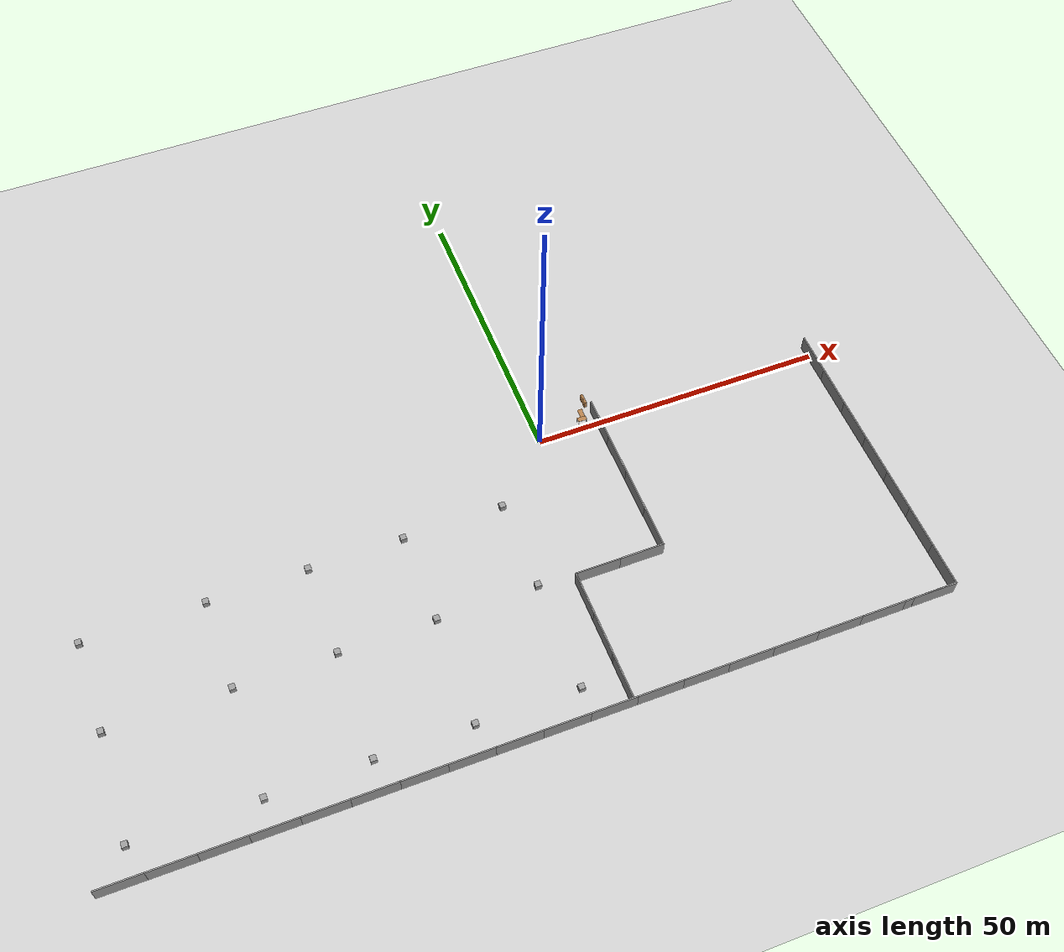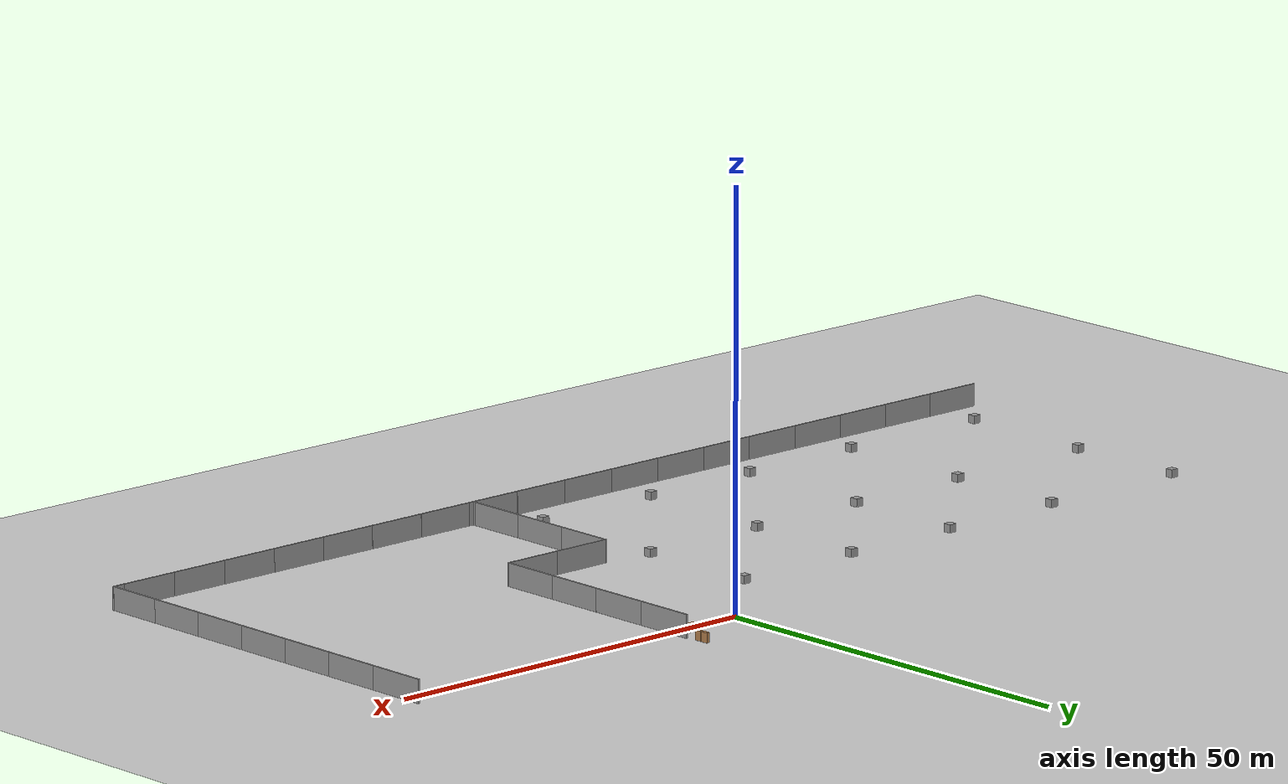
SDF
<sdf version="1.7">
 <world name="default">
  <model name="ground_plane">
   <static>1</static>
   <link name="link">
    <collision name="collision">
     <geometry><plane><normal>0 0 1</normal><size>100 100</size></plane></geometry>
     <surface>
      <contact><collide_bitmask>65535</collide_bitmask></contact>
      <friction><ode><mu>100</mu><mu2>50</mu2></ode></friction>
     </surface>
    </collision>
    <visual name="visual">
     <cast_shadows>0</cast_shadows>
     <geometry><plane><normal>0 0 1</normal><size>100 100</size></plane></geometry>
     <material>
      <script><uri>file://media/materials/scripts/gazebo.material</uri><name>Gazebo/Grey</name></script>
     </material>
    </visual>
   </link>
  </model>
  <model name="grey_wall_clone">
   <static>1</static>
   <link name="link">
    <pose>0 0 1.4 0 -0 0</pose>
    <collision name="collision"><geometry><box><size>7.5 0.2 2.8</size></box></geometry></collision>
    <visual name="visual">
     <cast_shadows>0</cast_shadows>
     <geometry><box><size>7.5 0.2 2.8</size></box></geometry>
     <material>
      <script>
       <uri>model://grey_wall/materials/scripts</uri>
       <uri>model://grey_wall/materials/textures</uri>
       <name>vrc/grey_wall</name>
      </script>
     </material>
    </visual>
   </link>
   <pose>7.13079 -49.8823 0 0 -0 0</pose>
  </model>
  <model name="grey_wall_clone_0">
   <static>1</static>
   <link name="link">
    <pose>0 0 1.4 0 -0 0</pose>
    <collision name="collision"><geometry><box><size>7.5 0.2 2.8</size></box></geometry></collision>
    <visual name="visual">
     <cast_shadows>0</cast_shadows>
     <geometry><box><size>7.5 0.2 2.8</size></box></geometry>
     <material>
      <script>
       <uri>model://grey_wall/materials/scripts</uri>
       <uri>model://grey_wall/materials/textures</uri>
       <name>vrc/grey_wall</name>
      </script>
     </material>
    </visual>
   </link>
   <pose>-0.374793 -49.8831 0 0 -0 0</pose>
  </model>
  <model name="grey_wall_clone_1">
   <static>1</static>
   <link name="link">
    <pose>0 0 1.4 0 -0 0</pose>
    <collision name="collision"><geometry><box><size>7.5 0.2 2.8</size></box></geometry></collision>
    <visual name="visual">
     <cast_shadows>0</cast_shadows>
     <geometry><box><size>7.5 0.2 2.8</size></box></geometry>
     <material>
      <script>
       <uri>model://grey_wall/materials/scripts</uri>
       <uri>model://grey_wall/materials/textures</uri>
       <name>vrc/grey_wall</name>
      </script>
     </material>
    </visual>
   </link>
   <pose>-7.88033 -49.8844 0 0 -0 0</pose>
  </model>
  <model name="grey_wall_clone_2">
   <static>1</static>
   <link name="link">
    <pose>0 0 1.4 0 -0 0</pose>
    <collision name="collision"><geometry><box><size>7.5 0.2 2.8</size></box></geometry></collision>
    <visual name="visual">
     <cast_shadows>0</cast_shadows>
     <geometry><box><size>7.5 0.2 2.8</size></box></geometry>
     <material>
      <script>
       <uri>model://grey_wall/materials/scripts</uri>
       <uri>model://grey_wall/materials/textures</uri>
       <name>vrc/grey_wall</name>
      </script>
     </material>
    </visual>
   </link>
   <pose>-15.3843 -49.877 0 0 -0 0</pose>
  </model>
  <model name="grey_wall_clone_3">
   <static>1</static>
   <link name="link">
    <pose>0 0 1.4 0 -0 0</pose>
    <collision name="collision"><geometry><box><size>7.5 0.2 2.8</size></box></geometry></collision>
    <visual name="visual">
     <cast_shadows>0</cast_shadows>
     <geometry><box><size>7.5 0.2 2.8</size></box></geometry>
     <material>
      <script>
       <uri>model://grey_wall/materials/scripts</uri>
       <uri>model://grey_wall/materials/textures</uri>
       <name>vrc/grey_wall</name>
      </script>
     </material>
    </visual>
   </link>
   <pose>-22.8836 -49.8847 0 0 -0 0</pose>
  </model>
  <model name="grey_wall_clone_4">
   <static>1</static>
   <link name="link">
    <pose>0 0 1.4 0 -0 0</pose>
    <collision name="collision"><geometry><box><size>7.5 0.2 2.8</size></box></geometry></collision>
    <visual name="visual">
     <cast_shadows>0</cast_shadows>
     <geometry><box><size>7.5 0.2 2.8</size></box></geometry>
     <material>
      <script>
       <uri>model://grey_wall/materials/scripts</uri>
       <uri>model://grey_wall/materials/textures</uri>
       <name>vrc/grey_wall</name>
      </script>
     </material>
    </visual>
   </link>
   <pose>-30.2619 -49.8845 0 0 -0 0</pose>
  </model>
  <model name="grey_wall_clone_5">
   <static>1</static>
   <link name="link">
    <pose>0 0 1.4 0 -0 0</pose>
    <collision name="collision"><geometry><box><size>7.5 0.2 2.8</size></box></geometry></collision>
    <visual name="visual">
     <cast_shadows>0</cast_shadows>
     <geometry><box><size>7.5 0.2 2.8</size></box></geometry>
     <material>
      <script>
       <uri>model://grey_wall/materials/scripts</uri>
       <uri>model://grey_wall/materials/textures</uri>
       <name>vrc/grey_wall</name>
      </script>
     </material>
    </visual>
   </link>
   <pose>-37.6658 -49.8798 0 0 -0 0</pose>
  </model>
  <model name="grey_wall_clone_6">
   <static>1</static>
   <link name="link">
    <pose>0 0 1.4 0 -0 0</pose>
    <collision name="collision"><geometry><box><size>7.5 0.2 2.8</size></box></geometry></collision>
    <visual name="visual">
     <cast_shadows>0</cast_shadows>
     <geometry><box><size>7.5 0.2 2.8</size></box></geometry>
     <material>
      <script>
       <uri>model://grey_wall/materials/scripts</uri>
       <uri>model://grey_wall/materials/textures</uri>
       <name>vrc/grey_wall</name>
      </script>
     </material>
    </visual>
   </link>
   <pose>-45.0649 -49.8818 0 0 -0 0</pose>
  </model>
  <model name="grey_wall_clone_7">
   <static>1</static>
   <link name="link">
    <pose>0 0 1.4 0 -0 0</pose>
    <collision name="collision"><geometry><box><size>7.5 0.2 2.8</size></box></geometry></collision>
    <visual name="visual">
     <cast_shadows>0</cast_shadows>
     <geometry><box><size>7.5 0.2 2.8</size></box></geometry>
     <material>
      <script>
       <uri>model://grey_wall/materials/scripts</uri>
       <uri>model://grey_wall/materials/textures</uri>
       <name>vrc/grey_wall</name>
      </script>
     </material>
    </visual>
   </link>
   <pose>-52.4924 -49.8817 0 0 -0 0</pose>
  </model>
  <model name="grey_wall_clone_8">
   <static>1</static>
   <link name="link">
    <pose>0 0 1.4 0 -0 0</pose>
    <collision name="collision"><geometry><box><size>7.5 0.2 2.8</size></box></geometry></collision>
    <visual name="visual">
     <cast_shadows>0</cast_shadows>
     <geometry><box><size>7.5 0.2 2.8</size></box></geometry>
     <material>
      <script>
       <uri>model://grey_wall/materials/scripts</uri>
       <uri>model://grey_wall/materials/textures</uri>
       <name>vrc/grey_wall</name>
      </script>
     </material>
    </visual>
   </link>
   <pose>-59.9913 -49.8823 0 0 -0 0</pose>
  </model>
  <model name="grey_wall_clone_9">
   <static>1</static>
   <link name="link">
    <pose>0 0 1.4 0 -0 0</pose>
    <collision name="collision"><geometry><box><size>7.5 0.2 2.8</size></box></geometry></collision>
    <visual name="visual">
     <cast_shadows>0</cast_shadows>
     <geometry><box><size>7.5 0.2 2.8</size></box></geometry>
     <material>
      <script>
       <uri>model://grey_wall/materials/scripts</uri>
       <uri>model://grey_wall/materials/textures</uri>
       <name>vrc/grey_wall</name>
      </script>
     </material>
    </visual>
   </link>
   <pose>-67.4862 -49.8731 0 0 -0 0</pose>
  </model>
  <model name="grey_wall_clone_10">
   <static>1</static>
   <link name="link">
    <pose>0 0 1.4 0 -0 0</pose>
    <collision name="collision"><geometry><box><size>7.5 0.2 2.8</size></box></geometry></collision>
    <visual name="visual">
     <cast_shadows>0</cast_shadows>
     <geometry><box><size>7.5 0.2 2.8</size></box></geometry>
     <material>
      <script>
       <uri>model://grey_wall/materials/scripts</uri>
       <uri>model://grey_wall/materials/textures</uri>
       <name>vrc/grey_wall</name>
      </script>
     </material>
    </visual>
   </link>
   <pose>-74.9801 -49.877 0 0 -0 0</pose>
  </model>
  <model name="grey_wall_clone_11">
   <static>1</static>
   <link name="link">
    <pose>0 0 1.4 0 -0 0</pose>
    <collision name="collision"><geometry><box><size>7.5 0.2 2.8</size></box></geometry></collision>
    <visual name="visual">
     <cast_shadows>0</cast_shadows>
     <geometry><box><size>7.5 0.2 2.8</size></box></geometry>
     <material>
      <script>
       <uri>model://grey_wall/materials/scripts</uri>
       <uri>model://grey_wall/materials/textures</uri>
       <name>vrc/grey_wall</name>
      </script>
     </material>
    </visual>
   </link>
   <pose>-82.4353 -49.869 0 0 -0 0</pose>
  </model>
  <model name="grey_wall_clone_21_clone_20_clone_15">
   <static>1</static>
   <link name="link">
    <pose>0 0 1.4 0 -0 0</pose>
    <collision name="collision"><geometry><box><size>7.5 0.2 2.8</size></box></geometry></collision>
    <visual name="visual">
     <cast_shadows>0</cast_shadows>
     <geometry><box><size>7.5 0.2 2.8</size></box></geometry>
     <material>
      <script>
       <uri>model://grey_wall/materials/scripts</uri>
       <uri>model://grey_wall/materials/textures</uri>
       <name>vrc/grey_wall</name>
      </script>
     </material>
    </visual>
   </link>
   <pose>49.7545 -1.60418 0 0 -0 1.57</pose>
  </model>
  <model name="grey_wall_clone_21_clone_20_clone_16">
   <static>1</static>
   <link name="link">
    <pose>0 0 1.4 0 -0 0</pose>
    <collision name="collision"><geometry><box><size>7.5 0.2 2.8</size></box></geometry></collision>
    <visual name="visual">
     <cast_shadows>0</cast_shadows>
     <geometry><box><size>7.5 0.2 2.8</size></box></geometry>
     <material>
      <script>
       <uri>model://grey_wall/materials/scripts</uri>
       <uri>model://grey_wall/materials/textures</uri>
       <name>vrc/grey_wall</name>
      </script>
     </material>
    </visual>
   </link>
   <pose>49.7485 -9.06367 0 0 -0 1.57</pose>
  </model>
  <model name="grey_wall_clone_21_clone_20_clone_17">
   <static>1</static>
   <link name="link">
    <pose>0 0 1.4 0 -0 0</pose>
    <collision name="collision"><geometry><box><size>7.5 0.2 2.8</size></box></geometry></collision>
    <visual name="visual">
     <cast_shadows>0</cast_shadows>
     <geometry><box><size>7.5 0.2 2.8</size></box></geometry>
     <material>
      <script>
       <uri>model://grey_wall/materials/scripts</uri>
       <uri>model://grey_wall/materials/textures</uri>
       <name>vrc/grey_wall</name>
      </script>
     </material>
    </visual>
   </link>
   <pose>49.7355 -16.5323 0 0 -0 1.57</pose>
  </model>
  <model name="grey_wall_clone_21_clone_20_clone_18">
   <static>1</static>
   <link name="link">
    <pose>0 0 1.4 0 -0 0</pose>
    <collision name="collision"><geometry><box><size>7.5 0.2 2.8</size></box></geometry></collision>
    <visual name="visual">
     <cast_shadows>0</cast_shadows>
     <geometry><box><size>7.5 0.2 2.8</size></box></geometry>
     <material>
      <script>
       <uri>model://grey_wall/materials/scripts</uri>
       <uri>model://grey_wall/materials/textures</uri>
       <name>vrc/grey_wall</name>
      </script>
     </material>
    </visual>
   </link>
   <pose>49.7352 -23.9046 0 0 -0 1.57</pose>
  </model>
  <model name="grey_wall_clone_21_clone_20_clone_19">
   <static>1</static>
   <link name="link">
    <pose>0 0 1.4 0 -0 0</pose>
    <collision name="collision"><geometry><box><size>7.5 0.2 2.8</size></box></geometry></collision>
    <visual name="visual">
     <cast_shadows>0</cast_shadows>
     <geometry><box><size>7.5 0.2 2.8</size></box></geometry>
     <material>
      <script>
       <uri>model://grey_wall/materials/scripts</uri>
       <uri>model://grey_wall/materials/textures</uri>
       <name>vrc/grey_wall</name>
      </script>
     </material>
    </visual>
   </link>
   <pose>49.734 -31.3808 0 0 -0 1.57</pose>
  </model>
  <model name="grey_wall_clone_21_clone_20_clone_20">
   <static>1</static>
   <link name="link">
    <pose>0 0 1.4 0 -0 0</pose>
    <collision name="collision"><geometry><box><size>7.5 0.2 2.8</size></box></geometry></collision>
    <visual name="visual">
     <cast_shadows>0</cast_shadows>
     <geometry><box><size>7.5 0.2 2.8</size></box></geometry>
     <material>
      <script>
       <uri>model://grey_wall/materials/scripts</uri>
       <uri>model://grey_wall/materials/textures</uri>
       <name>vrc/grey_wall</name>
      </script>
     </material>
    </visual>
   </link>
   <pose>49.7216 -38.8579 0 0 -0 1.57</pose>
  </model>
  <model name="grey_wall_clone_21_clone_20_clone_21">
   <static>1</static>
   <link name="link">
    <pose>0 0 1.4 0 -0 0</pose>
    <collision name="collision"><geometry><box><size>7.5 0.2 2.8</size></box></geometry></collision>
    <visual name="visual">
     <cast_shadows>0</cast_shadows>
     <geometry><box><size>7.5 0.2 2.8</size></box></geometry>
     <material>
      <script>
       <uri>model://grey_wall/materials/scripts</uri>
       <uri>model://grey_wall/materials/textures</uri>
       <name>vrc/grey_wall</name>
      </script>
     </material>
    </visual>
   </link>
   <pose>49.7104 -46.1719 0 0 -0 1.57</pose>
  </model>
  <model name="grey_wall_clone_clone">
   <static>1</static>
   <link name="link">
    <pose>0 0 1.4 0 -0 0</pose>
    <collision name="collision"><geometry><box><size>7.5 0.2 2.8</size></box></geometry></collision>
    <visual name="visual">
     <cast_shadows>0</cast_shadows>
     <geometry><box><size>7.5 0.2 2.8</size></box></geometry>
     <material>
      <script>
       <uri>model://grey_wall/materials/scripts</uri>
       <uri>model://grey_wall/materials/textures</uri>
       <name>vrc/grey_wall</name>
      </script>
     </material>
    </visual>
   </link>
   <pose>14.6278 -49.8878 0 0 -0 0</pose>
  </model>
  <model name="grey_wall_clone_clone_0">
   <static>1</static>
   <link name="link">
    <pose>0 0 1.4 0 -0 0</pose>
    <collision name="collision"><geometry><box><size>7.5 0.2 2.8</size></box></geometry></collision>
    <visual name="visual">
     <cast_shadows>0</cast_shadows>
     <geometry><box><size>7.5 0.2 2.8</size></box></geometry>
     <material>
      <script>
       <uri>model://grey_wall/materials/scripts</uri>
       <uri>model://grey_wall/materials/textures</uri>
       <name>vrc/grey_wall</name>
      </script>
     </material>
    </visual>
   </link>
   <pose>22.0975 -49.8885 0 0 -0 0</pose>
  </model>
  <model name="grey_wall_clone_clone_1">
   <static>1</static>
   <link name="link">
    <pose>0 0 1.4 0 -0 0</pose>
    <collision name="collision"><geometry><box><size>7.5 0.2 2.8</size></box></geometry></collision>
    <visual name="visual">
     <cast_shadows>0</cast_shadows>
     <geometry><box><size>7.5 0.2 2.8</size></box></geometry>
     <material>
      <script>
       <uri>model://grey_wall/materials/scripts</uri>
       <uri>model://grey_wall/materials/textures</uri>
       <name>vrc/grey_wall</name>
      </script>
     </material>
    </visual>
   </link>
   <pose>29.56 -49.8861 0 0 -0 0</pose>
  </model>
  <model name="grey_wall_clone_clone_2">
   <static>1</static>
   <link name="link">
    <pose>0 0 1.4 0 -0 0</pose>
    <collision name="collision"><geometry><box><size>7.5 0.2 2.8</size></box></geometry></collision>
    <visual name="visual">
     <cast_shadows>0</cast_shadows>
     <geometry><box><size>7.5 0.2 2.8</size></box></geometry>
     <material>
      <script>
       <uri>model://grey_wall/materials/scripts</uri>
       <uri>model://grey_wall/materials/textures</uri>
       <name>vrc/grey_wall</name>
      </script>
     </material>
    </visual>
   </link>
   <pose>37.0546 -49.8861 0 0 -0 0</pose>
  </model>
  <model name="grey_wall_clone_clone_3">
   <static>1</static>
   <link name="link">
    <pose>0 0 1.4 0 -0 0</pose>
    <collision name="collision"><geometry><box><size>7.5 0.2 2.8</size></box></geometry></collision>
    <visual name="visual">
     <cast_shadows>0</cast_shadows>
     <geometry><box><size>7.5 0.2 2.8</size></box></geometry>
     <material>
      <script>
       <uri>model://grey_wall/materials/scripts</uri>
       <uri>model://grey_wall/materials/textures</uri>
       <name>vrc/grey_wall</name>
      </script>
     </material>
    </visual>
   </link>
   <pose>44.538 -49.8866 0 0 -0 0</pose>
  </model>
  <model name="grey_wall_clone_clone_4">
   <static>1</static>
   <link name="link">
    <pose>0 0 1.4 0 -0 0</pose>
    <collision name="collision"><geometry><box><size>7.5 0.2 2.8</size></box></geometry></collision>
    <visual name="visual">
     <cast_shadows>0</cast_shadows>
     <geometry><box><size>7.5 0.2 2.8</size></box></geometry>
     <material>
      <script>
       <uri>model://grey_wall/materials/scripts</uri>
       <uri>model://grey_wall/materials/textures</uri>
       <name>vrc/grey_wall</name>
      </script>
     </material>
    </visual>
   </link>
   <pose>46.0661 -49.8918 0 0 -0 0</pose>
  </model>
  <model name="grey_wall_clone_21_clone_20_clone_13_clone_0">
   <static>1</static>
   <link name="link">
    <pose>0 0 1.4 0 -0 0</pose>
    <collision name="collision"><geometry><box><size>7.5 0.2 2.8</size></box></geometry></collision>
    <visual name="visual">
     <cast_shadows>0</cast_shadows>
     <geometry><box><size>7.5 0.2 2.8</size></box></geometry>
     <material>
      <script>
       <uri>model://grey_wall/materials/scripts</uri>
       <uri>model://grey_wall/materials/textures</uri>
       <name>vrc/grey_wall</name>
      </script>
     </material>
    </visual>
   </link>
   <pose>10.1533 -1.00076 0 0 -0 1.57</pose>
  </model>
  <model name="grey_wall_clone_21_clone_20_clone_13_clone_1">
   <static>1</static>
   <link name="link">
    <pose>0 0 1.4 0 -0 0</pose>
    <collision name="collision"><geometry><box><size>7.5 0.2 2.8</size></box></geometry></collision>
    <visual name="visual">
     <cast_shadows>0</cast_shadows>
     <geometry><box><size>7.5 0.2 2.8</size></box></geometry>
     <material>
      <script>
       <uri>model://grey_wall/materials/scripts</uri>
       <uri>model://grey_wall/materials/textures</uri>
       <name>vrc/grey_wall</name>
      </script>
     </material>
    </visual>
   </link>
   <pose>10.1452 -8.50424 0 0 -0 1.57</pose>
  </model>
  <model name="grey_wall_clone_21_clone_20_clone_13_clone_2">
   <static>1</static>
   <link name="link">
    <pose>0 0 1.4 0 -0 0</pose>
    <collision name="collision"><geometry><box><size>7.5 0.2 2.8</size></box></geometry></collision>
    <visual name="visual">
     <cast_shadows>0</cast_shadows>
     <geometry><box><size>7.5 0.2 2.8</size></box></geometry>
     <material>
      <script>
       <uri>model://grey_wall/materials/scripts</uri>
       <uri>model://grey_wall/materials/textures</uri>
       <name>vrc/grey_wall</name>
      </script>
     </material>
    </visual>
   </link>
   <pose>10.1381 -15.9861 0 0 -0 1.57</pose>
  </model>
  <model name="grey_wall_clone_21_clone_20_clone_13_clone_3">
   <static>1</static>
   <link name="link">
    <pose>0 0 1.4 0 -0 0</pose>
    <collision name="collision"><geometry><box><size>7.5 0.2 2.8</size></box></geometry></collision>
    <visual name="visual">
     <cast_shadows>0</cast_shadows>
     <geometry><box><size>7.5 0.2 2.8</size></box></geometry>
     <material>
      <script>
       <uri>model://grey_wall/materials/scripts</uri>
       <uri>model://grey_wall/materials/textures</uri>
       <name>vrc/grey_wall</name>
      </script>
     </material>
    </visual>
   </link>
   <pose>10.1348 -23.447 0 0 -0 1.57</pose>
  </model>
  <model name="grey_wall_clone_clone_5_clone">
   <static>1</static>
   <link name="link">
    <pose>0 0 1.4 0 -0 0</pose>
    <collision name="collision"><geometry><box><size>7.5 0.2 2.8</size></box></geometry></collision>
    <visual name="visual">
     <cast_shadows>0</cast_shadows>
     <geometry><box><size>7.5 0.2 2.8</size></box></geometry>
     <material>
      <script>
       <uri>model://grey_wall/materials/scripts</uri>
       <uri>model://grey_wall/materials/textures</uri>
       <name>vrc/grey_wall</name>
      </script>
     </material>
    </visual>
   </link>
   <pose>6.49638 -27.1102 0 0 -0 0</pose>
  </model>
  <model name="grey_wall_clone_clone_5_clone_0">
   <static>1</static>
   <link name="link">
    <pose>0 0 1.4 0 -0 0</pose>
    <collision name="collision"><geometry><box><size>7.5 0.2 2.8</size></box></geometry></collision>
    <visual name="visual">
     <cast_shadows>0</cast_shadows>
     <geometry><box><size>7.5 0.2 2.8</size></box></geometry>
     <material>
      <script>
       <uri>model://grey_wall/materials/scripts</uri>
       <uri>model://grey_wall/materials/textures</uri>
       <name>vrc/grey_wall</name>
      </script>
     </material>
    </visual>
   </link>
   <pose>-0.969636 -27.1078 0 0 -0 0</pose>
  </model>
  <model name="grey_wall_clone_21_clone_20_clone_13_clone_3_clone">
   <static>1</static>
   <link name="link">
    <pose>0 0 1.4 0 -0 0</pose>
    <collision name="collision"><geometry><box><size>7.5 0.2 2.8</size></box></geometry></collision>
    <visual name="visual">
     <cast_shadows>0</cast_shadows>
     <geometry><box><size>7.5 0.2 2.8</size></box></geometry>
     <material>
      <script>
       <uri>model://grey_wall/materials/scripts</uri>
       <uri>model://grey_wall/materials/textures</uri>
       <name>vrc/grey_wall</name>
      </script>
     </material>
    </visual>
   </link>
   <pose>-4.79323 -30.7579 0 0 -0 1.57</pose>
  </model>
  <model name="grey_wall_clone_21_clone_20_clone_13_clone_3_clone_0">
   <static>1</static>
   <link name="link">
    <pose>0 0 1.4 0 -0 0</pose>
    <collision name="collision"><geometry><box><size>7.5 0.2 2.8</size></box></geometry></collision>
    <visual name="visual">
     <cast_shadows>0</cast_shadows>
     <geometry><box><size>7.5 0.2 2.8</size></box></geometry>
     <material>
      <script>
       <uri>model://grey_wall/materials/scripts</uri>
       <uri>model://grey_wall/materials/textures</uri>
       <name>vrc/grey_wall</name>
      </script>
     </material>
    </visual>
   </link>
   <pose>-4.8016 -38.2646 0 0 -0 1.57</pose>
  </model>
  <model name="grey_wall_clone_21_clone_20_clone_13_clone_3_clone_1">
   <static>1</static>
   <link name="link">
    <pose>0 0 1.4 0 -0 0</pose>
    <collision name="collision"><geometry><box><size>7.5 0.2 2.8</size></box></geometry></collision>
    <visual name="visual">
     <cast_shadows>0</cast_shadows>
     <geometry><box><size>7.5 0.2 2.8</size></box></geometry>
     <material>
      <script>
       <uri>model://grey_wall/materials/scripts</uri>
       <uri>model://grey_wall/materials/textures</uri>
       <name>vrc/grey_wall</name>
      </script>
     </material>
    </visual>
   </link>
   <pose>-4.81761 -45.7125 0 0 -0 1.57</pose>
  </model>
  <model name="grey_wall_clone_21_clone_20_clone_13_clone_3_clone_2">
   <static>1</static>
   <link name="link">
    <pose>0 0 1.4 0 -0 0</pose>
    <collision name="collision"><geometry><box><size>7.5 0.2 2.8</size></box></geometry></collision>
    <visual name="visual">
     <cast_shadows>0</cast_shadows>
     <geometry><box><size>7.5 0.2 2.8</size></box></geometry>
     <material>
      <script>
       <uri>model://grey_wall/materials/scripts</uri>
       <uri>model://grey_wall/materials/textures</uri>
       <name>vrc/grey_wall</name>
      </script>
     </material>
    </visual>
   </link>
   <pose>-4.82476 -46.2342 0 0 -0 1.57</pose>
  </model>
  <model name="table_clone">
   <static>1</static>
   <link name="link">
    <collision name="surface">
     <pose>0 0 1 0 -0 0</pose>
     <geometry><box><size>1.5 0.8 0.03</size></box></geometry>
     <surface><friction><ode><mu>0.6</mu><mu2>0.6</mu2></ode></friction></surface>
    </collision>
    <visual name="visual1">
     <pose>0 0 1 0 -0 0</pose>
     <geometry><box><size>1.5 0.8 0.03</size></box></geometry>
     <material>
      <script><uri>file://media/materials/scripts/gazebo.material</uri><name>Gazebo/Wood</name></script>
     </material>
    </visual>
    <collision name="front_left_leg">
     <pose>0.68 0.38 0.5 0 -0 0</pose>
     <geometry><cylinder><radius>0.02</radius><length>1</length></cylinder></geometry>
    </collision>
    <visual name="front_left_leg">
     <pose>0.68 0.38 0.5 0 -0 0</pose>
     <geometry><cylinder><radius>0.02</radius><length>1</length></cylinder></geometry>
     <material>
      <script><uri>file://media/materials/scripts/gazebo.material</uri><name>Gazebo/Grey</name></script>
     </material>
    </visual>
    <collision name="front_right_leg">
     <pose>0.68 -0.38 0.5 0 -0 0</pose>
     <geometry><cylinder><radius>0.02</radius><length>1</length></cylinder></geometry>
    </collision>
    <visual name="front_right_leg">
     <pose>0.68 -0.38 0.5 0 -0 0</pose>
     <geometry><cylinder><radius>0.02</radius><length>1</length></cylinder></geometry>
     <material>
      <script><uri>file://media/materials/scripts/gazebo.material</uri><name>Gazebo/Grey</name></script>
     </material>
    </visual>
    <collision name="back_right_leg">
     <pose>-0.68 -0.38 0.5 0 -0 0</pose>
     <geometry><cylinder><radius>0.02</radius><length>1</length></cylinder></geometry>
    </collision>
    <visual name="back_right_leg">
     <pose>-0.68 -0.38 0.5 0 -0 0</pose>
     <geometry><cylinder><radius>0.02</radius><length>1</length></cylinder></geometry>
     <material>
      <script><uri>file://media/materials/scripts/gazebo.material</uri><name>Gazebo/Grey</name></script>
     </material>
    </visual>
    <collision name="back_left_leg">
     <pose>-0.68 0.38 0.5 0 -0 0</pose>
     <geometry><cylinder><radius>0.02</radius><length>1</length></cylinder></geometry>
    </collision>
    <visual name="back_left_leg">
     <pose>-0.68 0.38 0.5 0 -0 0</pose>
     <geometry><cylinder><radius>0.02</radius><length>1</length></cylinder></geometry>
     <material>
      <script><uri>file://media/materials/scripts/gazebo.material</uri><name>Gazebo/Grey</name></script>
     </material>
    </visual>
   </link>
   <pose>8.24796 2.34857 0 0 0 -1.60074</pose>
  </model>
  <model name="table_clone_0">
   <static>1</static>
   <link name="link">
    <collision name="surface">
     <pose>0 0 1 0 -0 0</pose>
     <geometry><box><size>1.5 0.8 0.03</size></box></geometry>
     <surface><friction><ode><mu>0.6</mu><mu2>0.6</mu2></ode></friction></surface>
    </collision>
    <visual name="visual1">
     <pose>0 0 1 0 -0 0</pose>
     <geometry><box><size>1.5 0.8 0.03</size></box></geometry>
     <material>
      <script><uri>file://media/materials/scripts/gazebo.material</uri><name>Gazebo/Wood</name></script>
     </material>
    </visual>
    <collision name="front_left_leg">
     <pose>0.68 0.38 0.5 0 -0 0</pose>
     <geometry><cylinder><radius>0.02</radius><length>1</length></cylinder></geometry>
    </collision>
    <visual name="front_left_leg">
     <pose>0.68 0.38 0.5 0 -0 0</pose>
     <geometry><cylinder><radius>0.02</radius><length>1</length></cylinder></geometry>
     <material>
      <script><uri>file://media/materials/scripts/gazebo.material</uri><name>Gazebo/Grey</name></script>
     </material>
    </visual>
    <collision name="front_right_leg">
     <pose>0.68 -0.38 0.5 0 -0 0</pose>
     <geometry><cylinder><radius>0.02</radius><length>1</length></cylinder></geometry>
    </collision>
    <visual name="front_right_leg">
     <pose>0.68 -0.38 0.5 0 -0 0</pose>
     <geometry><cylinder><radius>0.02</radius><length>1</length></cylinder></geometry>
     <material>
      <script><uri>file://media/materials/scripts/gazebo.material</uri><name>Gazebo/Grey</name></script>
     </material>
    </visual>
    <collision name="back_right_leg">
     <pose>-0.68 -0.38 0.5 0 -0 0</pose>
     <geometry><cylinder><radius>0.02</radius><length>1</length></cylinder></geometry>
    </collision>
    <visual name="back_right_leg">
     <pose>-0.68 -0.38 0.5 0 -0 0</pose>
     <geometry><cylinder><radius>0.02</radius><length>1</length></cylinder></geometry>
     <material>
      <script><uri>file://media/materials/scripts/gazebo.material</uri><name>Gazebo/Grey</name></script>
     </material>
    </visual>
    <collision name="back_left_leg">
     <pose>-0.68 0.38 0.5 0 -0 0</pose>
     <geometry><cylinder><radius>0.02</radius><length>1</length></cylinder></geometry>
    </collision>
    <visual name="back_left_leg">
     <pose>-0.68 0.38 0.5 0 -0 0</pose>
     <geometry><cylinder><radius>0.02</radius><length>1</length></cylinder></geometry>
     <material>
      <script><uri>file://media/materials/scripts/gazebo.material</uri><name>Gazebo/Grey</name></script>
     </material>
    </visual>
   </link>
   <pose>7.91448 1.16372 0 0 -0 0</pose>
  </model>
  <model name="unit_box">
   <pose>-10.6413 -10.0264 0.499991 0 -0 0</pose>
   <link name="link">
    <inertial>
     <mass>1</mass>
     <inertia>
      <ixx>0.166667</ixx>
      <ixy>0</ixy>
      <ixz>0</ixz>
      <iyy>0.166667</iyy>
      <iyz>0</iyz>
      <izz>0.166667</izz>
     </inertia>
    </inertial>
    <collision name="collision"><geometry><box><size>1 1 1</size></box></geometry></collision>
    <visual name="visual">
     <geometry><box><size>1 1 1</size></box></geometry>
     <material>
      <script><name>Gazebo/Grey</name><uri>file://media/materials/scripts/gazebo.material</uri></script>
     </material>
    </visual>
   </link>
  </model>
  <model name="unit_box_clone_1">
   <pose>-80 -10.0358 0.499991 0 -0 0</pose>
   <link name="link">
    <inertial>
     <mass>1</mass>
     <inertia>
      <ixx>0.166667</ixx>
      <ixy>0</ixy>
      <ixz>0</ixz>
      <iyy>0.166667</iyy>
      <iyz>0</iyz>
      <izz>0.166667</izz>
     </inertia>
    </inertial>
    <collision name="collision"><geometry><box><size>1 1 1</size></box></geometry></collision>
    <visual name="visual">
     <geometry><box><size>1 1 1</size></box></geometry>
     <material>
      <script><name>Gazebo/Grey</name><uri>file://media/materials/scripts/gazebo.material</uri></script>
     </material>
    </visual>
   </link>
  </model>
  <model name="unit_box_clone_2">
   <pose>-60 -10.0362 0.499995 -5e-06 4e-06 -3e-06</pose>
   <link name="link">
    <inertial>
     <mass>1</mass>
     <inertia>
      <ixx>0.166667</ixx>
      <ixy>0</ixy>
      <ixz>0</ixz>
      <iyy>0.166667</iyy>
      <iyz>0</iyz>
      <izz>0.166667</izz>
     </inertia>
    </inertial>
    <collision name="collision"><geometry><box><size>1 1 1</size></box></geometry></collision>
    <visual name="visual">
     <geometry><box><size>1 1 1</size></box></geometry>
     <material>
      <script><name>Gazebo/Grey</name><uri>file://media/materials/scripts/gazebo.material</uri></script>
     </material>
    </visual>
   </link>
  </model>
  <model name="unit_box_clone_3">
   <pose>-43.4078 -10.0375 0.499995 0 -1e-05 -0.001402</pose>
   <link name="link">
    <inertial>
     <mass>1</mass>
     <inertia>
      <ixx>0.166667</ixx>
      <ixy>0</ixy>
      <ixz>0</ixz>
      <iyy>0.166667</iyy>
      <iyz>0</iyz>
      <izz>0.166667</izz>
     </inertia>
    </inertial>
    <collision name="collision"><geometry><box><size>1 1 1</size></box></geometry></collision>
    <visual name="visual">
     <geometry><box><size>1 1 1</size></box></geometry>
     <material>
      <script><name>Gazebo/Grey</name><uri>file://media/materials/scripts/gazebo.material</uri></script>
     </material>
    </visual>
   </link>
  </model>
  <model name="unit_box_clone_4">
   <pose>-27.5874 -10.0392 0.499995 -5e-06 -4e-06 5e-06</pose>
   <link name="link">
    <inertial>
     <mass>1</mass>
     <inertia>
      <ixx>0.166667</ixx>
      <ixy>0</ixy>
      <ixz>0</ixz>
      <iyy>0.166667</iyy>
      <iyz>0</iyz>
      <izz>0.166667</izz>
     </inertia>
    </inertial>
    <collision name="collision"><geometry><box><size>1 1 1</size></box></geometry></collision>
    <visual name="visual">
     <geometry><box><size>1 1 1</size></box></geometry>
     <material>
      <script><name>Gazebo/Grey</name><uri>file://media/materials/scripts/gazebo.material</uri></script>
     </material>
    </visual>
   </link>
  </model>
  <model name="unit_box_clone_10">
   <pose>-10.6321 -25.7583 0.499991 0 -0 1e-05</pose>
   <link name="link">
    <inertial>
     <mass>1</mass>
     <inertia>
      <ixx>0.166667</ixx>
      <ixy>0</ixy>
      <ixz>0</ixz>
      <iyy>0.166667</iyy>
      <iyz>0</iyz>
      <izz>0.166667</izz>
     </inertia>
    </inertial>
    <collision name="collision"><geometry><box><size>1 1 1</size></box></geometry></collision>
    <visual name="visual">
     <geometry><box><size>1 1 1</size></box></geometry>
     <material>
      <script><name>Gazebo/Grey</name><uri>file://media/materials/scripts/gazebo.material</uri></script>
     </material>
    </visual>
   </link>
  </model>
  <model name="unit_box_clone_10_clone_0">
   <pose>-80 -25.754 0.499991 0 -0 1e-05</pose>
   <link name="link">
    <inertial>
     <mass>1</mass>
     <inertia>
      <ixx>0.166667</ixx>
      <ixy>0</ixy>
      <ixz>0</ixz>
      <iyy>0.166667</iyy>
      <iyz>0</iyz>
      <izz>0.166667</izz>
     </inertia>
    </inertial>
    <collision name="collision"><geometry><box><size>1 1 1</size></box></geometry></collision>
    <visual name="visual">
     <geometry><box><size>1 1 1</size></box></geometry>
     <material>
      <script><name>Gazebo/Grey</name><uri>file://media/materials/scripts/gazebo.material</uri></script>
     </material>
    </visual>
   </link>
  </model>
  <model name="unit_box_clone_10_clone_1">
   <pose>-60 -25.7572 0.499997 0 5e-06 1e-05</pose>
   <link name="link">
    <inertial>
     <mass>1</mass>
     <inertia>
      <ixx>0.166667</ixx>
      <ixy>0</ixy>
      <ixz>0</ixz>
      <iyy>0.166667</iyy>
      <iyz>0</iyz>
      <izz>0.166667</izz>
     </inertia>
    </inertial>
    <collision name="collision"><geometry><box><size>1 1 1</size></box></geometry></collision>
    <visual name="visual">
     <geometry><box><size>1 1 1</size></box></geometry>
     <material>
      <script><name>Gazebo/Grey</name><uri>file://media/materials/scripts/gazebo.material</uri></script>
     </material>
    </visual>
   </link>
  </model>
  <model name="unit_box_clone_10_clone_2">
   <pose>-43.4612 -25.7513 0.499995 -5e-06 4e-06 1e-05</pose>
   <link name="link">
    <inertial>
     <mass>1</mass>
     <inertia>
      <ixx>0.166667</ixx>
      <ixy>0</ixy>
      <ixz>0</ixz>
      <iyy>0.166667</iyy>
      <iyz>0</iyz>
      <izz>0.166667</izz>
     </inertia>
    </inertial>
    <collision name="collision"><geometry><box><size>1 1 1</size></box></geometry></collision>
    <visual name="visual">
     <geometry><box><size>1 1 1</size></box></geometry>
     <material>
      <script><name>Gazebo/Grey</name><uri>file://media/materials/scripts/gazebo.material</uri></script>
     </material>
    </visual>
   </link>
  </model>
  <model name="unit_box_clone_10_clone_3">
   <pose>-27.4474 -25.7485 0.499995 -5e-06 -4e-06 1.5e-05</pose>
   <link name="link">
    <inertial>
     <mass>1</mass>
     <inertia>
      <ixx>0.166667</ixx>
      <ixy>0</ixy>
      <ixz>0</ixz>
      <iyy>0.166667</iyy>
      <iyz>0</iyz>
      <izz>0.166667</izz>
     </inertia>
    </inertial>
    <collision name="collision"><geometry><box><size>1 1 1</size></box></geometry></collision>
    <visual name="visual">
     <geometry><box><size>1 1 1</size></box></geometry>
     <material>
      <script><name>Gazebo/Grey</name><uri>file://media/materials/scripts/gazebo.material</uri></script>
     </material>
    </visual>
   </link>
  </model>
  <model name="unit_box_clone_10_clone_clone_0">
   <pose>-80.6176 -44.049 0.499995 -5e-06 -4e-06 1.5e-05</pose>
   <link name="link">
    <inertial>
     <mass>1</mass>
     <inertia>
      <ixx>0.166667</ixx>
      <ixy>0</ixy>
      <ixz>0</ixz>
      <iyy>0.166667</iyy>
      <iyz>0</iyz>
      <izz>0.166667</izz>
     </inertia>
    </inertial>
    <collision name="collision"><geometry><box><size>1 1 1</size></box></geometry></collision>
    <visual name="visual">
     <geometry><box><size>1 1 1</size></box></geometry>
     <material>
      <script><name>Gazebo/Grey</name><uri>file://media/materials/scripts/gazebo.material</uri></script>
     </material>
    </visual>
   </link>
  </model>
  <model name="unit_box_clone_10_clone_clone_1">
   <pose>-60.3685 -44.345 0.499995 -5e-06 -4e-06 1.5e-05</pose>
   <link name="link">
    <inertial>
     <mass>1</mass>
     <inertia>
      <ixx>0.166667</ixx>
      <ixy>0</ixy>
      <ixz>0</ixz>
      <iyy>0.166667</iyy>
      <iyz>0</iyz>
      <izz>0.166667</izz>
     </inertia>
    </inertial>
    <collision name="collision"><geometry><box><size>1 1 1</size></box></geometry></collision>
    <visual name="visual">
     <geometry><box><size>1 1 1</size></box></geometry>
     <material>
      <script><name>Gazebo/Grey</name><uri>file://media/materials/scripts/gazebo.material</uri></script>
     </material>
    </visual>
   </link>
  </model>
  <model name="unit_box_clone_10_clone_clone_2">
   <pose>-43.7453 -44.3019 0.499995 -5e-06 -4e-06 1.5e-05</pose>
   <link name="link">
    <inertial>
     <mass>1</mass>
     <inertia>
      <ixx>0.166667</ixx>
      <ixy>0</ixy>
      <ixz>0</ixz>
      <iyy>0.166667</iyy>
      <iyz>0</iyz>
      <izz>0.166667</izz>
     </inertia>
    </inertial>
    <collision name="collision"><geometry><box><size>1 1 1</size></box></geometry></collision>
    <visual name="visual">
     <geometry><box><size>1 1 1</size></box></geometry>
     <material>
      <script><name>Gazebo/Grey</name><uri>file://media/materials/scripts/gazebo.material</uri></script>
     </material>
    </visual>
   </link>
  </model>
  <model name="unit_box_clone_10_clone_clone_3">
   <pose>-27.9177 -44.4427 0.499995 -5e-06 -4e-06 1.5e-05</pose>
   <link name="link">
    <inertial>
     <mass>1</mass>
     <inertia>
      <ixx>0.166667</ixx>
      <ixy>0</ixy>
      <ixz>0</ixz>
      <iyy>0.166667</iyy>
      <iyz>0</iyz>
      <izz>0.166667</izz>
     </inertia>
    </inertial>
    <collision name="collision"><geometry><box><size>1 1 1</size></box></geometry></collision>
    <visual name="visual">
     <geometry><box><size>1 1 1</size></box></geometry>
     <material>
      <script><name>Gazebo/Grey</name><uri>file://media/materials/scripts/gazebo.material</uri></script>
     </material>
    </visual>
   </link>
  </model>
  <model name="unit_box_clone_10_clone_clone_4">
   <pose>-10.957 -44.5596 0.499995 -5e-06 -4e-06 1.5e-05</pose>
   <link name="link">
    <inertial>
     <mass>1</mass>
     <inertia>
      <ixx>0.166667</ixx>
      <ixy>0</ixy>
      <ixz>0</ixz>
      <iyy>0.166667</iyy>
      <iyz>0</iyz>
      <izz>0.166667</izz>
     </inertia>
    </inertial>
    <collision name="collision"><geometry><box><size>1 1 1</size></box></geometry></collision>
    <visual name="visual">
     <geometry><box><size>1 1 1</size></box></geometry>
     <material>
      <script><name>Gazebo/Grey</name><uri>file://media/materials/scripts/gazebo.material</uri></script>
     </material>
    </visual>
   </link>
  </model>
  <model name="bookshelf_clone_clone">
   <static>1</static>
   <link name="link">
    <inertial><mass>1</mass></inertial>
    <collision name="back">
     <pose>0 0.005 0.6 0 -0 0</pose>
     <geometry><box><size>0.9 0.01 1.2</size></box></geometry>
    </collision>
    <visual name="visual1">
     <pose>0 0.005 0.6 0 -0 0</pose>
     <geometry><box><size>0.9 0.01 1.2</size></box></geometry>
     <material>
      <script><uri>file://media/materials/scripts/gazebo.material</uri><name>Gazebo/Wood</name></script>
     </material>
    </visual>
    <collision name="left_side">
     <pose>0.45 -0.195 0.6 0 -0 0</pose>
     <geometry><box><size>0.02 0.4 1.2</size></box></geometry>
    </collision>
    <visual name="visual2">
     <pose>0.45 -0.195 0.6 0 -0 0</pose>
     <geometry><box><size>0.02 0.4 1.2</size></box></geometry>
     <material>
      <script><uri>file://media/materials/scripts/gazebo.material</uri><name>Gazebo/Wood</name></script>
     </material>
    </visual>
    <collision name="right_side">
     <pose>-0.45 -0.195 0.6 0 -0 0</pose>
     <geometry><box><size>0.02 0.4 1.2</size></box></geometry>
    </collision>
    <visual name="visual3">
     <pose>-0.45 -0.195 0.6 0 -0 0</pose>
     <geometry><box><size>0.02 0.4 1.2</size></box></geometry>
     <material>
      <script><uri>file://media/materials/scripts/gazebo.material</uri><name>Gazebo/Wood</name></script>
     </material>
    </visual>
    <collision name="bottom">
     <pose>0 -0.195 0.03 0 -0 0</pose>
     <geometry><box><size>0.88 0.4 0.06</size></box></geometry>
    </collision>
    <visual name="visual4">
     <pose>0 -0.195 0.03 0 -0 0</pose>
     <geometry><box><size>0.88 0.4 0.06</size></box></geometry>
     <material>
      <script><uri>file://media/materials/scripts/gazebo.material</uri><name>Gazebo/Wood</name></script>
     </material>
    </visual>
    <collision name="top">
     <pose>0 -0.195 1.19 0 -0 0</pose>
     <geometry><box><size>0.88 0.4 0.02</size></box></geometry>
    </collision>
    <visual name="visual5">
     <pose>0 -0.195 1.19 0 -0 0</pose>
     <geometry><box><size>0.88 0.4 0.02</size></box></geometry>
     <material>
      <script><uri>file://media/materials/scripts/gazebo.material</uri><name>Gazebo/Wood</name></script>
     </material>
    </visual>
    <collision name="low_shelf">
     <pose>0 -0.195 0.43 0 -0 0</pose>
     <geometry><box><size>0.88 0.4 0.02</size></box></geometry>
    </collision>
    <visual name="visual6">
     <pose>0 -0.195 0.43 0 -0 0</pose>
     <geometry><box><size>0.88 0.4 0.02</size></box></geometry>
     <material>
      <script><uri>file://media/materials/scripts/gazebo.material</uri><name>Gazebo/Wood</name></script>
     </material>
    </visual>
    <collision name="high_shelf">
     <pose>0 -0.195 0.8 0 -0 0</pose>
     <geometry><box><size>0.88 0.4 0.02</size></box></geometry>
    </collision>
    <visual name="visual7">
     <pose>0 -0.195 0.8 0 -0 0</pose>
     <geometry><box><size>0.88 0.4 0.02</size></box></geometry>
     <material>
      <script><uri>file://media/materials/scripts/gazebo.material</uri><name>Gazebo/Wood</name></script>
     </material>
    </visual>
   </link>
   <pose>9.90641 5.26854 0 0 0 -1.57272</pose>
  </model>
  <model name="bookshelf_clone_clone_0">
   <static>1</static>
   <link name="link">
    <inertial><mass>1</mass></inertial>
    <collision name="back">
     <pose>0 0.005 0.6 0 -0 0</pose>
     <geometry><box><size>0.9 0.01 1.2</size></box></geometry>
    </collision>
    <visual name="visual1">
     <pose>0 0.005 0.6 0 -0 0</pose>
     <geometry><box><size>0.9 0.01 1.2</size></box></geometry>
     <material>
      <script><uri>file://media/materials/scripts/gazebo.material</uri><name>Gazebo/Wood</name></script>
     </material>
    </visual>
    <collision name="left_side">
     <pose>0.45 -0.195 0.6 0 -0 0</pose>
     <geometry><box><size>0.02 0.4 1.2</size></box></geometry>
    </collision>
    <visual name="visual2">
     <pose>0.45 -0.195 0.6 0 -0 0</pose>
     <geometry><box><size>0.02 0.4 1.2</size></box></geometry>
     <material>
      <script><uri>file://media/materials/scripts/gazebo.material</uri><name>Gazebo/Wood</name></script>
     </material>
    </visual>
    <collision name="right_side">
     <pose>-0.45 -0.195 0.6 0 -0 0</pose>
     <geometry><box><size>0.02 0.4 1.2</size></box></geometry>
    </collision>
    <visual name="visual3">
     <pose>-0.45 -0.195 0.6 0 -0 0</pose>
     <geometry><box><size>0.02 0.4 1.2</size></box></geometry>
     <material>
      <script><uri>file://media/materials/scripts/gazebo.material</uri><name>Gazebo/Wood</name></script>
     </material>
    </visual>
    <collision name="bottom">
     <pose>0 -0.195 0.03 0 -0 0</pose>
     <geometry><box><size>0.88 0.4 0.06</size></box></geometry>
    </collision>
    <visual name="visual4">
     <pose>0 -0.195 0.03 0 -0 0</pose>
     <geometry><box><size>0.88 0.4 0.06</size></box></geometry>
     <material>
      <script><uri>file://media/materials/scripts/gazebo.material</uri><name>Gazebo/Wood</name></script>
     </material>
    </visual>
    <collision name="top">
     <pose>0 -0.195 1.19 0 -0 0</pose>
     <geometry><box><size>0.88 0.4 0.02</size></box></geometry>
    </collision>
    <visual name="visual5">
     <pose>0 -0.195 1.19 0 -0 0</pose>
     <geometry><box><size>0.88 0.4 0.02</size></box></geometry>
     <material>
      <script><uri>file://media/materials/scripts/gazebo.material</uri><name>Gazebo/Wood</name></script>
     </material>
    </visual>
    <collision name="low_shelf">
     <pose>0 -0.195 0.43 0 -0 0</pose>
     <geometry><box><size>0.88 0.4 0.02</size></box></geometry>
    </collision>
    <visual name="visual6">
     <pose>0 -0.195 0.43 0 -0 0</pose>
     <geometry><box><size>0.88 0.4 0.02</size></box></geometry>
     <material>
      <script><uri>file://media/materials/scripts/gazebo.material</uri><name>Gazebo/Wood</name></script>
     </material>
    </visual>
    <collision name="high_shelf">
     <pose>0 -0.195 0.8 0 -0 0</pose>
     <geometry><box><size>0.88 0.4 0.02</size></box></geometry>
    </collision>
    <visual name="visual7">
     <pose>0 -0.195 0.8 0 -0 0</pose>
     <geometry><box><size>0.88 0.4 0.02</size></box></geometry>
     <material>
      <script><uri>file://media/materials/scripts/gazebo.material</uri><name>Gazebo/Wood</name></script>
     </material>
    </visual>
   </link>
   <pose>9.90046 4.29198 0 0 0 -1.57272</pose>
  </model>
 </world>
</sdf>
